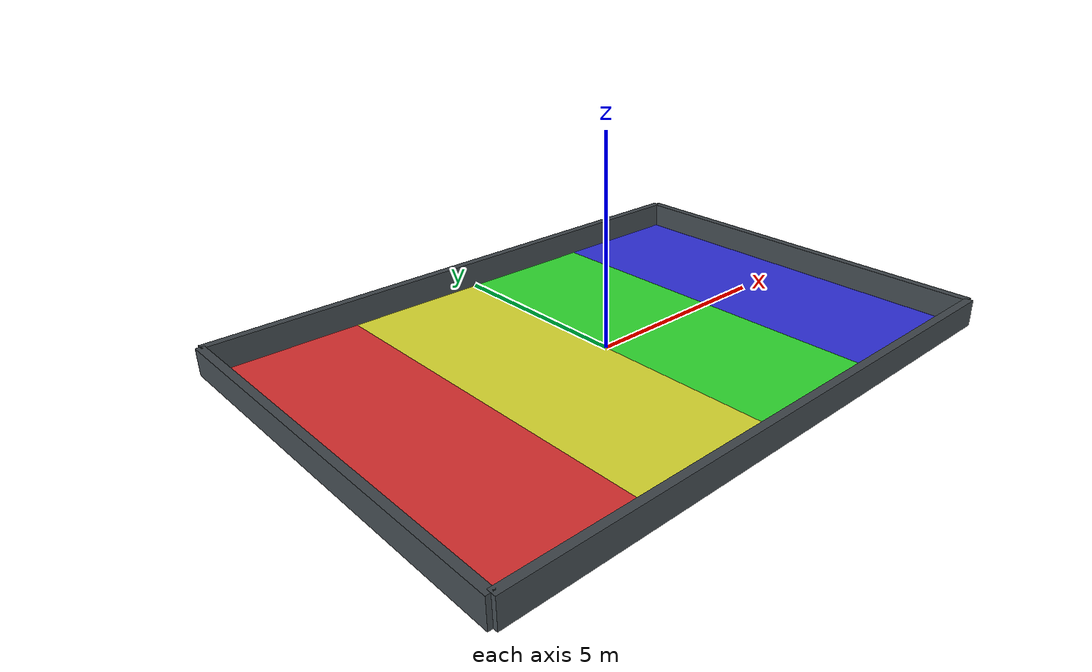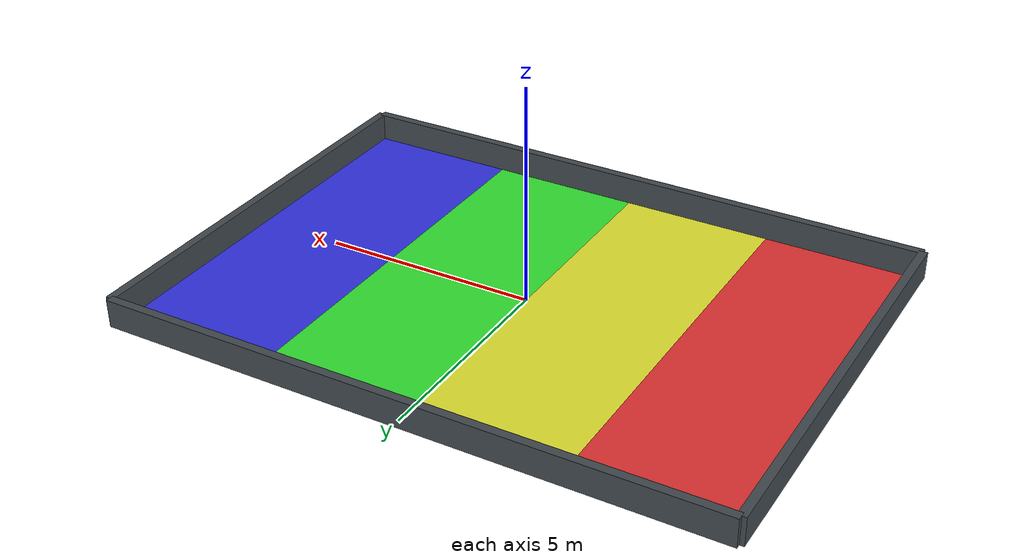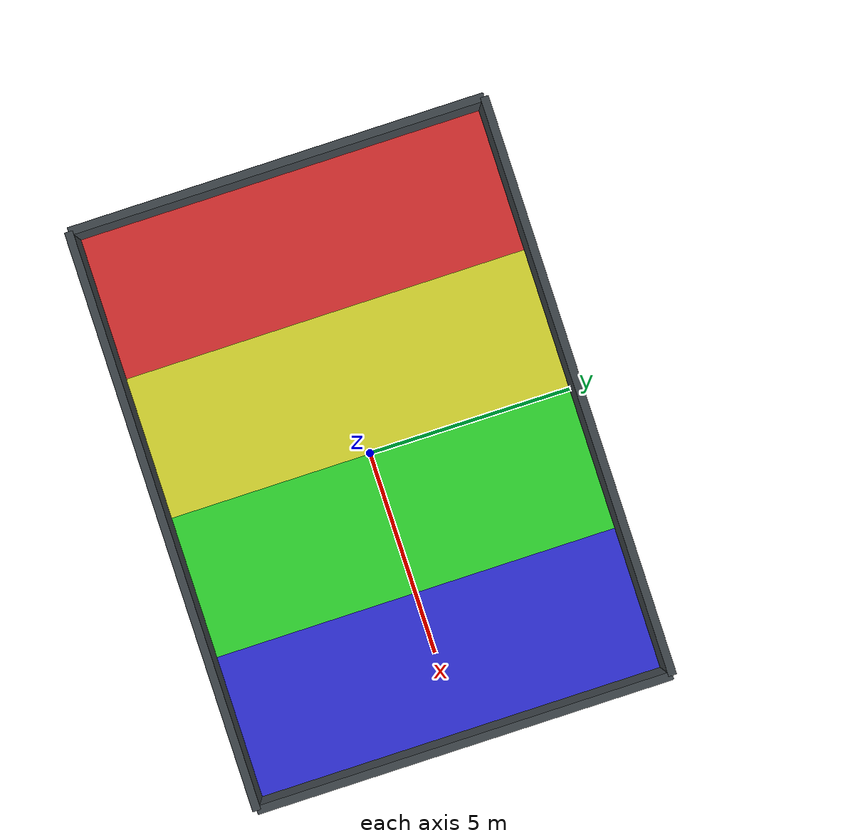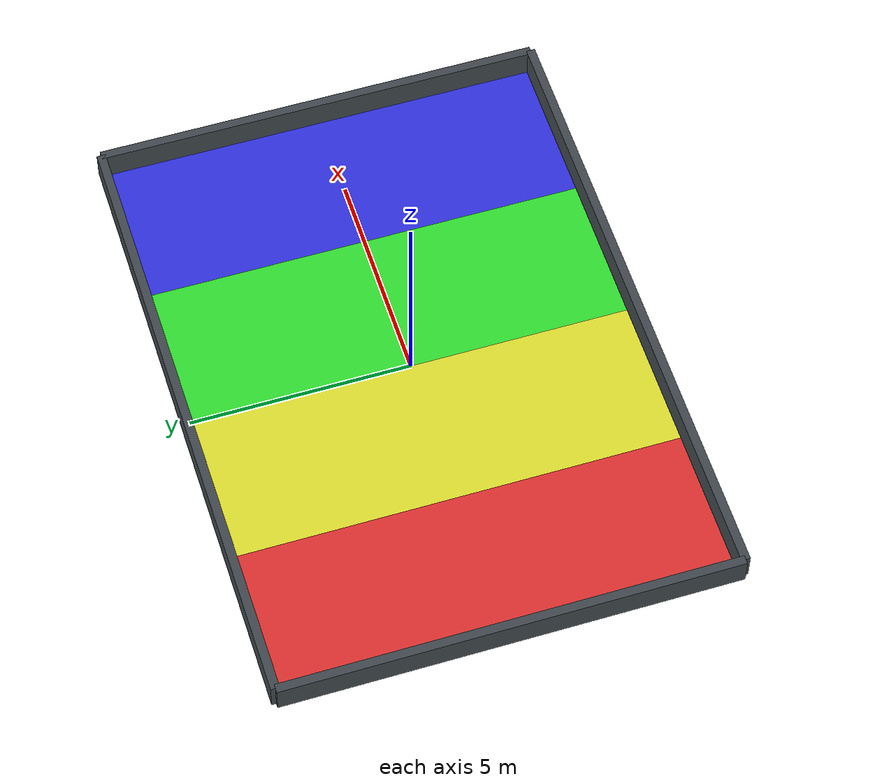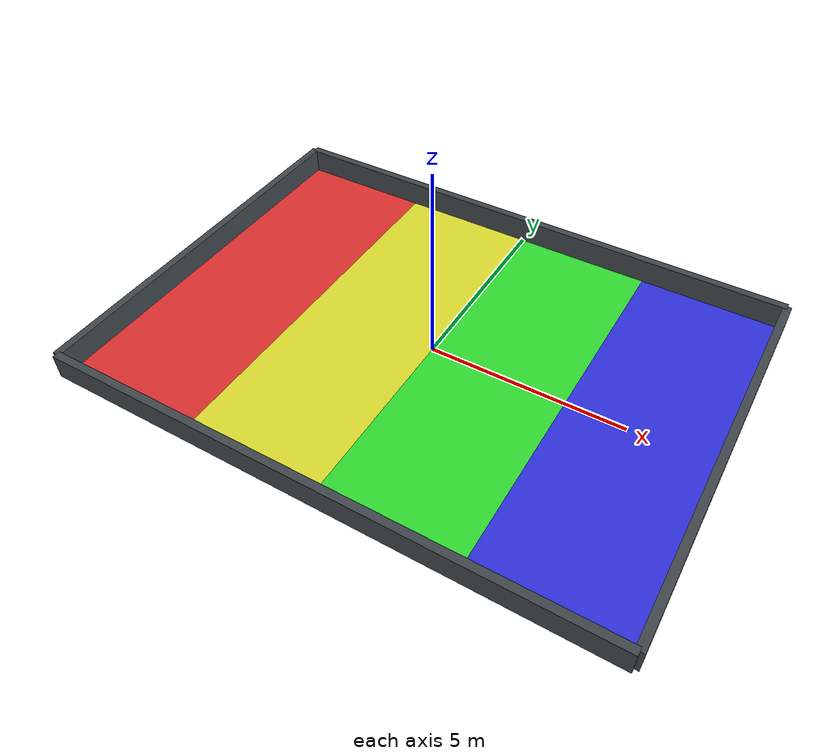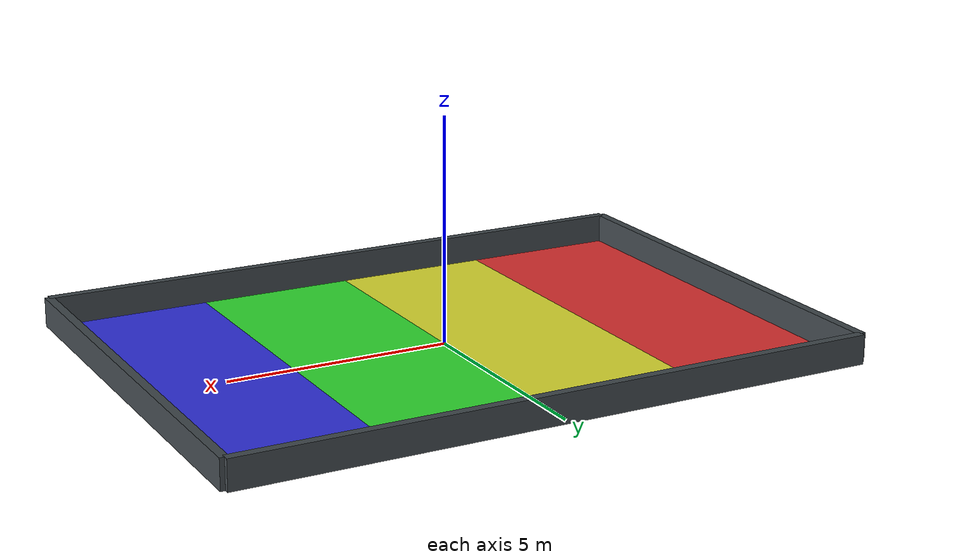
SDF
<?xml version="1.0" ?>
<sdf version="1.9">
  <world name="mundo_vacio_fricciones">
    <plugin filename="gz-sim-physics-system" name="gz::sim::systems::Physics" />
    <plugin filename="gz-sim-scene-broadcaster-system" name="gz::sim::systems::SceneBroadcaster" />
    <plugin filename="gz-sim-user-commands-system" name="gz::sim::systems::UserCommands" />
    <plugin filename="gz-sim-imu-system" name="gz::sim::systems::Imu" />
    <plugin filename="gz-sim-sensors-system" name="gz::sim::systems::Sensors">
      <render_engine>ogre2</render_engine>
    </plugin>

    <gravity>0 0 -9.8</gravity>
    <magnetic_field>6e-06 2.3e-05 -4.2e-05</magnetic_field>
    <atmosphere type="adiabatic" />

    <physics name="default_physics" type="ignored">
      <max_step_size>0.001</max_step_size>
      <real_time_factor>1.0</real_time_factor>
      <real_time_update_rate>1000</real_time_update_rate>
    </physics>

    <scene>
      <ambient>0.52 0.52 0.50 1</ambient>
      <background>0.78 0.84 0.90 1</background>
      <shadows>true</shadows>
    </scene>

    <gui fullscreen="0">
      <camera name="empty_world_overview">
        <pose>-0.8 -10.5 8.0 0 0.98 1.50</pose>
        <view_controller>orbit</view_controller>
        <projection_type>perspective</projection_type>
      </camera>
    </gui>

    <light name="sun" type="directional">
      <cast_shadows>true</cast_shadows>
      <pose>0 0 10 0 0 0</pose>
      <diffuse>1.0 0.94 0.82 1</diffuse>
      <specular>0.25 0.25 0.22 1</specular>
      <attenuation>
        <range>1000</range>
        <constant>0.9</constant>
        <linear>0.01</linear>
        <quadratic>0.001</quadratic>
      </attenuation>
      <direction>-0.45 0.25 -0.86</direction>
    </light>

    <!-- Tira 1: Alto agarre (Rojo) - X: -7 a -3.5 -->
    <model name="floor_s1_red_high_friction">
      <static>true</static>
      <pose>-5.25 0 -0.03 0 0 0</pose>
      <link name="link">
        <collision name="collision">
          <geometry><box><size>3.5 10 0.06</size></box></geometry>
          <surface>
            <friction><ode><mu>1.0</mu><mu2>1.0</mu2></ode></friction>
          </surface>
        </collision>
        <visual name="visual">
          <geometry><box><size>3.5 10 0.06</size></box></geometry>
          <material><ambient>0.8 0.1 0.1 1</ambient><diffuse>0.9 0.2 0.2 1</diffuse></material>
        </visual>
      </link>
    </model>

    <!-- Tira 2: Friccion Media (Amarillo) - X: -3.5 a 0 -->
    <model name="floor_s2_yellow_mid_friction">
      <static>true</static>
      <pose>-1.75 0 -0.03 0 0 0</pose>
      <link name="link">
        <collision name="collision">
          <geometry><box><size>3.5 10 0.06</size></box></geometry>
          <surface>
            <friction><ode><mu>0.1</mu><mu2>0.1</mu2></ode></friction>
          </surface>
        </collision>
        <visual name="visual">
          <geometry><box><size>3.5 10 0.06</size></box></geometry>
          <material><ambient>0.8 0.8 0.1 1</ambient><diffuse>0.9 0.9 0.2 1</diffuse></material>
        </visual>
      </link>
    </model>

    <!-- Tira 3: Friccion Baja (Verde) - X: 0 a 3.5 -->
    <model name="floor_s3_green_low_friction">
      <static>true</static>
      <pose>1.75 0 -0.03 0 0 0</pose>
      <link name="link">
        <collision name="collision">
          <geometry><box><size>3.5 10 0.06</size></box></geometry>
          <surface>
            <friction><ode><mu>0.01</mu><mu2>0.01</mu2></ode></friction>
          </surface>
        </collision>
        <visual name="visual">
          <geometry><box><size>3.5 10 0.06</size></box></geometry>
          <material><ambient>0.1 0.8 0.1 1</ambient><diffuse>0.2 0.9 0.2 1</diffuse></material>
        </visual>
      </link>
    </model>

    <!-- Tira 4: Hielo / Sin agarre (Azul) - X: 3.5 a 7 -->
    <model name="floor_s4_blue_ice">
      <static>true</static>
      <pose>5.25 0 -0.03 0 0 0</pose>
      <link name="link">
        <collision name="collision">
          <geometry><box><size>3.5 10 0.06</size></box></geometry>
          <surface>
            <friction><ode><mu>0.001</mu><mu2>0.001</mu2></ode></friction>
          </surface>
        </collision>
        <visual name="visual">
          <geometry><box><size>3.5 10 0.06</size></box></geometry>
          <material><ambient>0.1 0.1 0.8 1</ambient><diffuse>0.2 0.2 0.9 1</diffuse></material>
        </visual>
      </link>
    </model>

    <model name="arena_wall_north">
      <static>true</static>
      <pose>0 5.1 0.325 0 0 0</pose>
      <link name="link">
        <collision name="collision">
          <geometry>
            <box>
              <size>14.2 0.2 0.65</size>
            </box>
          </geometry>
        </collision>
        <visual name="visual">
          <geometry>
            <box>
              <size>14.2 0.2 0.65</size>
            </box>
          </geometry>
          <material>
            <ambient>0.18 0.20 0.22 1</ambient>
            <diffuse>0.26 0.29 0.31 1</diffuse>
          </material>
        </visual>
      </link>
    </model>

    <model name="arena_wall_south">
      <static>true</static>
      <pose>0 -5.1 0.325 0 0 0</pose>
      <link name="link">
        <collision name="collision">
          <geometry>
            <box>
              <size>14.2 0.2 0.65</size>
            </box>
          </geometry>
        </collision>
        <visual name="visual">
          <geometry>
            <box>
              <size>14.2 0.2 0.65</size>
            </box>
          </geometry>
          <material>
            <ambient>0.18 0.20 0.22 1</ambient>
            <diffuse>0.26 0.29 0.31 1</diffuse>
          </material>
        </visual>
      </link>
    </model>

    <model name="arena_wall_east">
      <static>true</static>
      <pose>7.1 0 0.325 0 0 0</pose>
      <link name="link">
        <collision name="collision">
          <geometry>
            <box>
              <size>0.2 10.2 0.65</size>
            </box>
          </geometry>
        </collision>
        <visual name="visual">
          <geometry>
            <box>
              <size>0.2 10.2 0.65</size>
            </box>
          </geometry>
          <material>
            <ambient>0.18 0.20 0.22 1</ambient>
            <diffuse>0.26 0.29 0.31 1</diffuse>
          </material>
        </visual>
      </link>
    </model>

    <model name="arena_wall_west">
      <static>true</static>
      <pose>-7.1 0 0.325 0 0 0</pose>
      <link name="link">
        <collision name="collision">
          <geometry>
            <box>
              <size>0.2 10.2 0.65</size>
            </box>
          </geometry>
        </collision>
        <visual name="visual">
          <geometry>
            <box>
              <size>0.2 10.2 0.65</size>
            </box>
          </geometry>
          <material>
            <ambient>0.18 0.20 0.22 1</ambient>
            <diffuse>0.26 0.29 0.31 1</diffuse>
          </material>
        </visual>
      </link>
    </model>
  </world>
</sdf>
